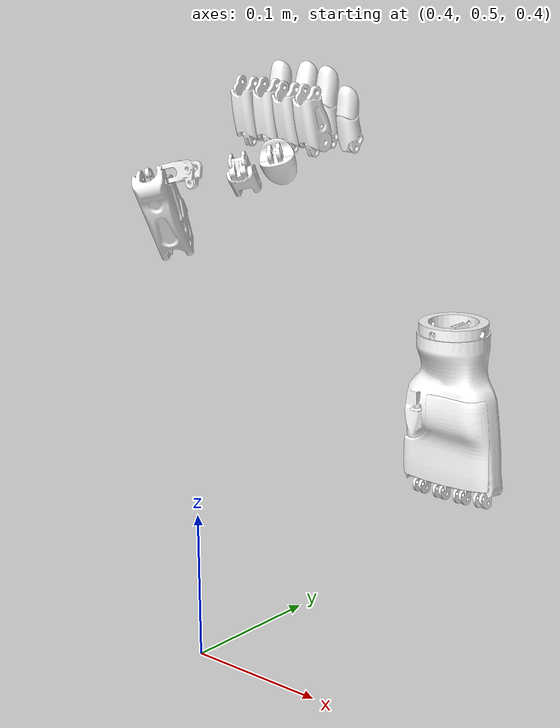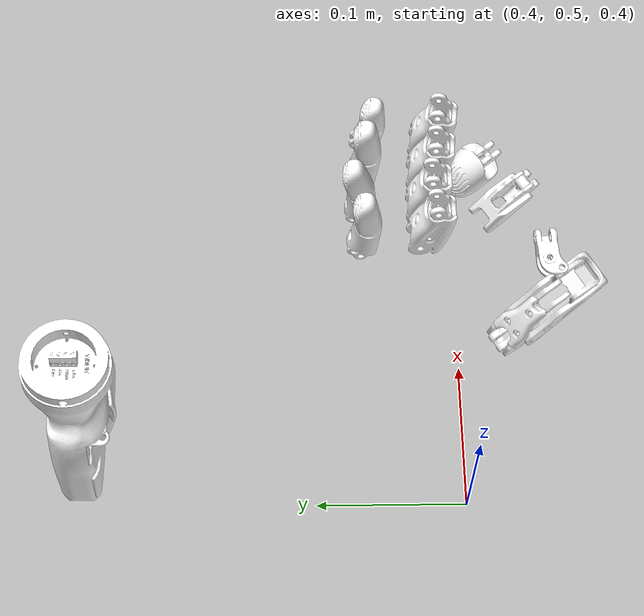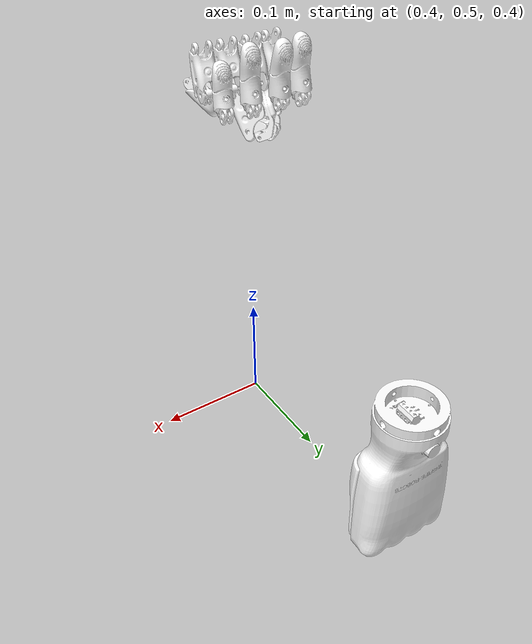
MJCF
<mujoco model="inspire_hand_r">
  <compiler angle="radian" autolimits="true" meshdir="meshes"/>
  <statistic meansize="0.0283996" extent="0.249469" center="0.423052 0.511898 0.748973"/>
  <default>
    <default class="base">
        <joint axis="0 0 1" range="-0.47 0.47"/>
        <position ctrlrange="-0.47 0.47"/>
    </default>
    <default class="proximal">
      <joint range="-0.196 1.61"/>
      <position ctrlrange="-0.196 1.61"/>
    </default>
    <default class="medial">
      <joint range="-0.174 1.709"/>
      <position ctrlrange="-0.174 1.709"/>
    </default>
    <default class="distal">
      <joint range="-0.227 1.618"/>
      <position ctrlrange="-0.227 1.618"/>
    </default>
    <default class="thumb_base">
        <joint range="0.263 1.396"/>
        <position ctrlrange="0 3.14" kp="0.5"/>
    </default>
    <default class="right_hand">
      <joint damping="0.05" armature="0.0002" frictionloss="0.01"/>
    </default>
  </default>

  <asset>
    <mesh name="R_hand_base_link" file="R_hand_base_link.STL"/>
    <mesh name="R_thumb_proximal_base" file="R_thumb_proximal_base.STL"/>
    <mesh name="R_thumb_proximal" file="R_thumb_proximal.STL"/>
    <mesh name="R_thumb_intermediate" file="R_thumb_intermediate.STL"/>
    <mesh name="R_thumb_distal" file="R_thumb_distal.STL"/>
    <mesh name="R_index_proximal" file="R_index_proximal.STL"/>
    <mesh name="R_index_distal" file="R_index_distal.STL"/>
    <mesh name="R_middle_proximal" file="R_middle_proximal.STL"/>
    <mesh name="R_middle_distal" file="R_middle_distal.STL"/>
    <mesh name="R_ring_proximal" file="R_ring_proximal.STL"/>
    <mesh name="R_ring_distal" file="R_ring_distal.STL"/>
    <mesh name="R_pinky_proximal" file="R_pinky_proximal.STL"/>
    <mesh name="R_pinky_distal" file="R_pinky_distal.STL"/>
  </asset>
  <worldbody>
  <body childclass="right_hand">
    <body name="R_hand_base">
    <geom pos="0.5 0.5 0.5" quat="0.707107 -0.707107 0 0" type="mesh" rgba="1 1 1 1" mesh="R_hand_base_link"/>
    </body>
    <body name="R_thumb_proximal_base" pos="0.401367 0.488636 0.73173" quat="0.990013 1.83152e-06 -0.140974 2.57024e-07">
      <inertial pos="-0.0048772 -0.010163 0.00044069" quat="0.075637 0.631378 -0.107678 0.764229" mass="0.0018869" diaginertia="8.66028e-08 6.87321e-08 4.94192e-08"/>
      <joint name="R_thumb_MCP_joint1" pos="0 0 0" axis="0 -1 0" range="0.2 1.3"/>
      <geom type="mesh" rgba="1 1 1 1" mesh="R_thumb_proximal_base"/>
      <body name="R_thumb_proximal" pos="-0.0115 -0.011843 0" quat="0.624568 0.331531 0.624571 -0.331532">
        <inertial pos="-3.8592e-05 0.02533 -0.0017007" quat="0.656826 0.754039 0.00146914 -0.00128614" mass="0.0066075" diaginertia="2.78601e-06 2.43932e-06 8.64597e-07"/>
        <joint name="R_thumb_MCP_joint2" pos="0 0 0" axis="-1 0 0" range="1.3 1.8"/>
        <geom type="mesh" rgba="1 1 1 1" mesh="R_thumb_proximal"/>
        <body name="R_thumb_intermediate" pos="0 0.055863 0.0039241" quat="0.999817 -0.0191483 0 0">
          <inertial pos="2.8437e-07 0.0072526 -0.0064293" quat="0.575988 0.817458 -0.000107087 6.96147e-05" mass="0.0037847" diaginertia="4.6531e-07 4.48088e-07 2.45662e-07"/>
          <joint name="R_thumb_PIP_joint" pos="0 0 0" axis="1 0 0" range="0 1"/>
          <geom type="mesh" rgba="1 1 1 1" mesh="R_thumb_intermediate"/>
          <body name="R_thumb_distal" pos="0 0.022558 -0.0020717" quat="0.999983 -0.00582097 0 0">
            <inertial pos="-3.3054e-06 0.010511 -0.00057863" quat="0.624404 0.781098 0.00147531 -0.00199963" mass="0.0033441" diaginertia="2.0026e-07 1.95252e-07 8.15973e-08"/>
            <joint name="R_thumb_DIP_joint" pos="0 0 0" axis="1 0 0" range="0 1.2"/>
            <geom type="mesh" rgba="1 1 1 1" mesh="R_thumb_distal"/>
          </body>
        </body>
      </body>
    </body>
    <body name="R_index_proximal" pos="0.405441 0.554025 0.74897" quat="-0.00212755 -0.0173224 0.992416 0.121677">
      <inertial pos="0.0099008 0.011884 0.0016958" quat="0.629448 0.777042 2.20645e-05 -2.45535e-05" mass="0.0042403" diaginertia="6.9398e-07 6.62877e-07 2.10913e-07"/>
      <joint name="R_index_MCP_joint" pos="0 0 0" axis="1 0 0" range="0 1.7"/>
      <geom type="mesh" rgba="1 1 1 1" mesh="R_index_proximal"/>
      <body name="R_index_distal" pos="0.001575 0.030445 0.010275" quat="0.999755 0.0221422 0 0">
        <inertial pos="0.0083258 0.019591 0.0019565" quat="0.581929 0.813239 4.32051e-07 6.03786e-07" mass="0.0045683" diaginertia="7.8179e-07 7.72465e-07 8.47248e-08"/>
        <joint name="R_index_DIP_joint" pos="0 0 0" axis="1 0 0" range="0 1.6"/>
        <geom type="mesh" rgba="1 1 1 1" mesh="R_index_distal"/>
      </body>
    </body>
    <body name="R_middle_proximal" pos="0.422932 0.554042 0.74897" quat="-3.64455e-06 4.57949e-07 0.992198 0.124673">
      <inertial pos="0.008065 0.011884 0.0016958" quat="0.629448 0.777042 2.15784e-05 -2.62734e-05" mass="0.0042403" diaginertia="6.9397e-07 6.62866e-07 2.10914e-07"/>
      <joint name="R_middle_MCP_joint" pos="0 0 0" axis="1 0 0" range="0 1.7"/>
      <geom type="mesh" rgba="1 1 1 1" mesh="R_middle_proximal"/>
      <body name="R_middle_distal" pos="0.0016673 0.030445 0.010275" quat="0.999363 0.0356989 0 0">
        <inertial pos="0.0063978 0.020807 0.0018039" quat="0.589614 0.807685 -6.23875e-05 4.98373e-05" mass="0.0050396" diaginertia="9.8384e-07 9.73281e-07 9.13985e-08"/>
        <joint name="R_middle_DIP_joint" pos="0 0 0" axis="1 0 0" range="0 1.6"/>
        <geom type="mesh" rgba="1 1 1 1" mesh="R_middle_distal"/>
      </body>
    </body>
    <body name="R_ring_proximal" pos="0.442106 0.553119 0.74897" quat="0.00325992 0.0259732 0.991858 0.12463">
      <inertial pos="0.0080207 0.011884 0.0016959" quat="0.629449 0.777042 1.88154e-05 -2.40552e-05" mass="0.0042403" diaginertia="6.9397e-07 6.62866e-07 2.10914e-07"/>
      <joint name="R_ring_MCP_joint" pos="0 0 0" axis="1 0 0" range="0 1.7"/>
      <geom type="mesh" rgba="1 1 1 1" mesh="R_ring_proximal"/>
      <body name="R_ring_distal" pos="0 0.030445 0.010275" quat="0.999803 0.0198727 0 0">
        <inertial pos="0.0080209 0.019591 0.0019565" quat="0.581926 0.813242 0 0" mass="0.0045683" diaginertia="7.8177e-07 7.72447e-07 8.47227e-08"/>
        <joint name="R_ring_DIP_joint" pos="0 0 0" axis="1 0 0" range="0 1.6"/>
        <geom type="mesh" rgba="1 1 1 1" mesh="R_ring_distal"/>
      </body>
    </body>
    <body name="R_pinky_proximal" pos="0.461118 0.551205 0.74897" quat="-0.00652853 -0.0519273 -0.990838 -0.124502">
      <inertial pos="0.0078887 0.011884 0.0016959" quat="0.629449 0.777042 2.01737e-05 -2.54775e-05" mass="0.0042403" diaginertia="6.9397e-07 6.62866e-07 2.10914e-07"/>
      <joint name="R_pinky_MCP_joint" pos="0 0 0" axis="1 0 0" range="0 1.7"/>
      <geom type="mesh" rgba="1 1 1 1" mesh="R_pinky_proximal"/>
      <body name="R_pinky_distal" pos="0 0.030445 0.010275" quat="0.999822 -0.0188444 0 0">
        <inertial pos="0.0078857 0.016239 0.0022243" quat="0.553304 0.832968 0.0036878 -0.00236477" mass="0.0035996" diaginertia="4.4867e-07 4.43716e-07 6.56536e-08"/>
        <joint name="R_pinky_DIP_joint" pos="0 0 0" axis="1 0 0" range="0 1.6"/>
        <geom type="mesh" rgba="1 1 1 1" mesh="R_pinky_distal"/>
      </body>
    </body>
  </body>
  </worldbody>

  <contact>
    <exclude body1="R_hand_base" body2="R_index_proximal"/>
    <exclude body1="R_hand_base" body2="R_middle_proximal"/>
    <exclude body1="R_hand_base" body2="R_ring_proximal"/>
    <exclude body1="R_hand_base" body2="R_pinky_proximal"/>
  </contact>

  <tendon>
    <fixed name="index_tendon" limited="true" range="-0.001 0.001">
        <joint joint="R_index_MCP_joint" coef="1"/>
        <joint joint="R_index_DIP_joint" coef="-1" />
    </fixed>
    <fixed name="middle_tendon" limited="true" range="-0.001 0.001">
        <joint joint="R_middle_MCP_joint" coef="1"/>
        <joint joint="R_middle_DIP_joint" coef="-1" />
    </fixed>
    <fixed name="ring_tendon" limited="true" range="-0.001 0.001">
        <joint joint="R_ring_MCP_joint" coef="1"/>
        <joint joint="R_ring_DIP_joint" coef="-1" />
    </fixed>
    <fixed name="pinky_tendon" limited="true" range="-0.001 0.001">
        <joint joint="R_pinky_MCP_joint" coef="1"/>
        <joint joint="R_pinky_DIP_joint" coef="-1" />
    </fixed>
  </tendon>

  <actuator>
    <position name="index_tendon_a" joint="R_index_MCP_joint" class="thumb_base"/>
    <position name="middle_tendon_a" joint="R_middle_MCP_joint" class="thumb_base"/>
    <position name="ring_tendon_a" joint="R_ring_MCP_joint" class="thumb_base"/>
    <position name="pinky_tendon_a" joint="R_pinky_MCP_joint" class="thumb_base"/>
  </actuator>

</mujoco>
